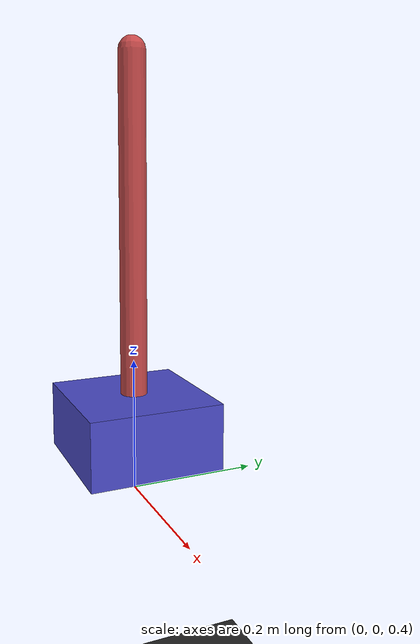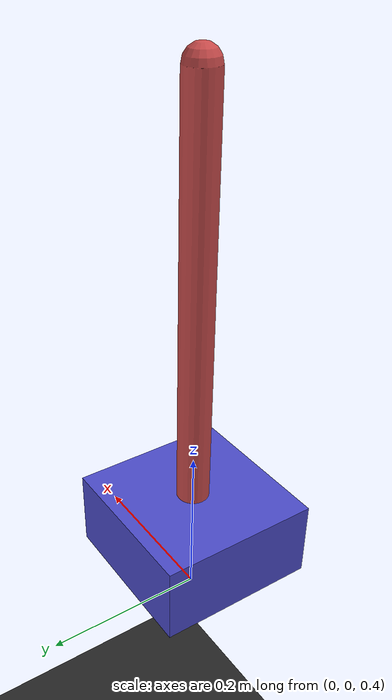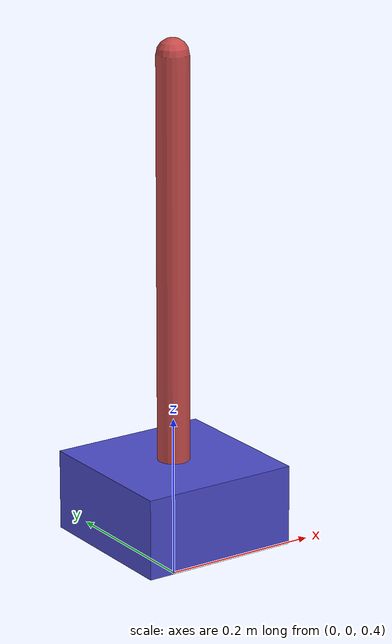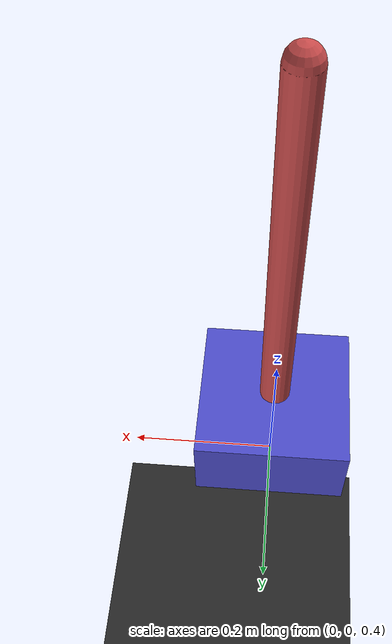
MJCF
<mujoco>
  <worldbody>
    <light pos="0 -1.5 2" dir="0 0.5 -1"/>
    <geom type="plane" size="4 4 0.1" rgba="0.15 0.15 0.15 1"/>
    <body name="cart" pos="0 0 0.5">
      <joint name="slide" type="slide" axis="1 0 0" damping="0.1" range="-2 2"/>
      <geom type="box" size="0.1 0.1 0.05" rgba="0.3 0.3 0.8 1"/>
      <body name="pole" pos="0 0 0.05">
        <joint name="hinge" type="hinge" axis="0 1 0" damping="0.01"/>
        <geom type="capsule" fromto="0 0 0 0 0 0.5" size="0.02" rgba="0.8 0.3 0.3 1"/>
      </body>
    </body>
  </worldbody>
  <actuator>
    <motor joint="slide" gear="30" ctrllimited="true" ctrlrange="-10 10"/>
  </actuator>
</mujoco>
